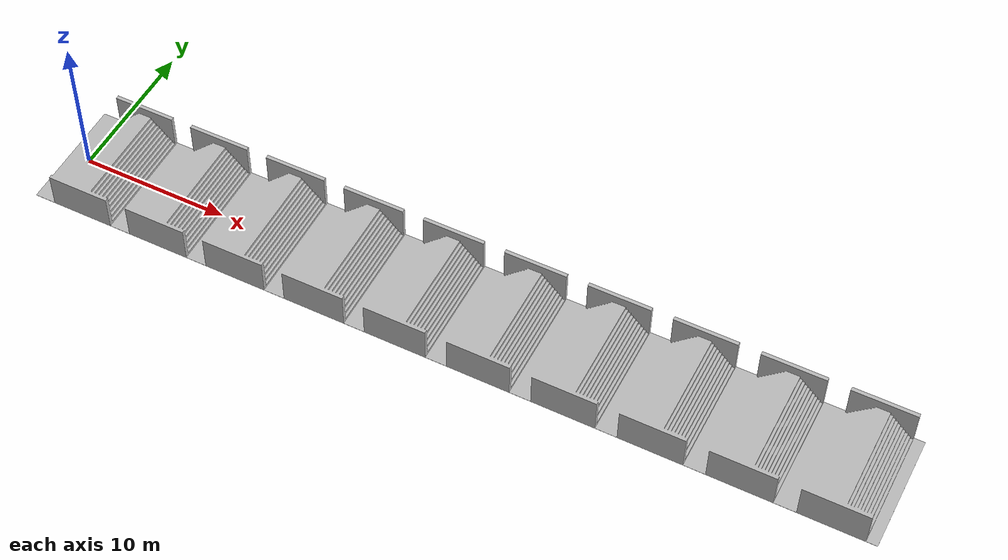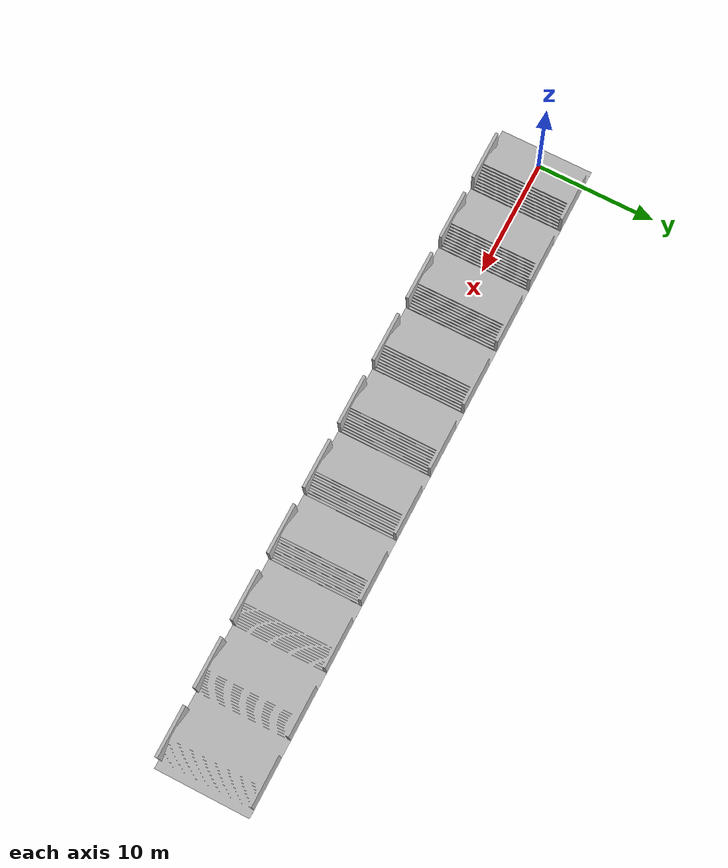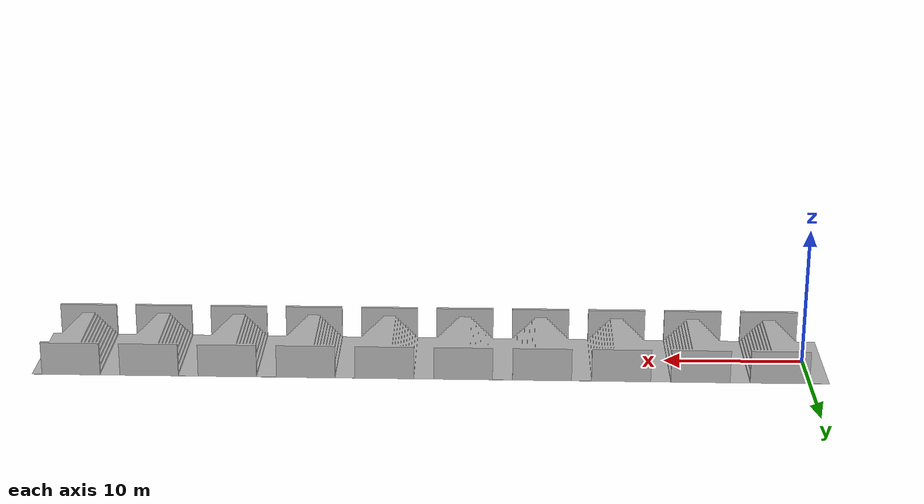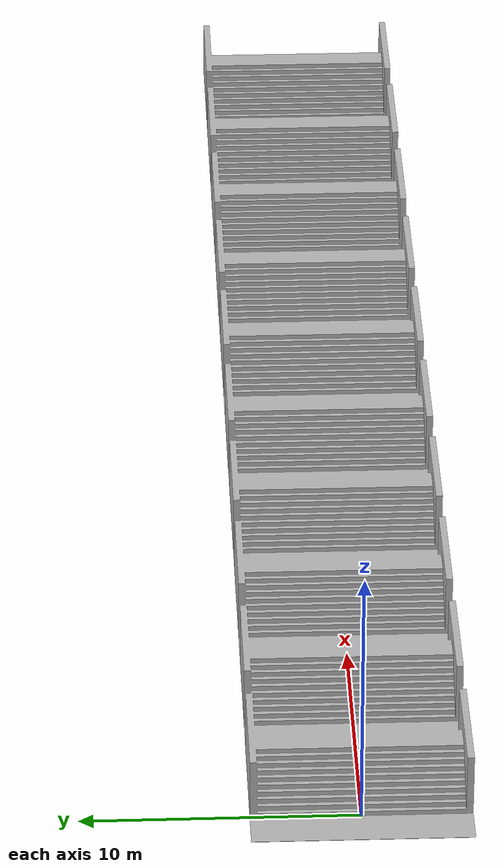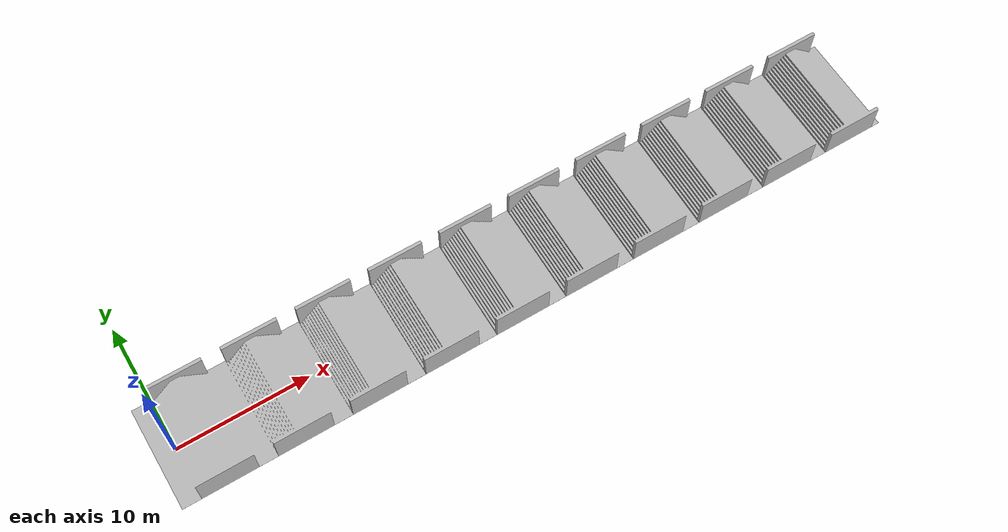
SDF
<?xml version="1.0" ?>
<sdf version="1.5">
  <world name="default">

    <physics type="ode">
      <max_step_size>0.0005</max_step_size>
      <real_time_factor>1</real_time_factor>
      <real_time_update_rate>2000</real_time_update_rate>
      <gravity>0 0 -9.81</gravity>
      <ode>
        <solver>
          <type>quick</type>
          <iters>50</iters>
          <sor>1.3</sor>
        </solver>
        <constraints>
          <cfm>0.0</cfm>
          <erp>0.2</erp>
          <contact_max_correcting_vel>10.0</contact_max_correcting_vel>
          <contact_surface_layer>0.001</contact_surface_layer>
        </constraints>
      </ode>
    </physics>

    <include><uri>model://sun</uri></include>

    <model name="go2_updown_18cm_wide">
      <static>true</static>
      <!-- Align first ascent to x ~= 0 and top surface baseline to z ~= 0. -->
      <pose>2.092461 0 -0.013959 0 0 0</pose>

      <link name="stairs_link">
        <!-- Mesh extracted from updown_18cm_wide.usdz.
             Mesh-local bounds in meters:
             x: [-3.5, 53.199989], y: [-3.952453, 3.952453], z: [0.0, 2.425287] -->
        <collision name="terrain_col">
          <geometry>
            <mesh>
              <uri>meshes/updown_18cm_wide.stl</uri>
            </mesh>
          </geometry>
          <surface>
            <friction>
              <ode>
                <mu>1.0</mu>
                <mu2>1.0</mu2>
              </ode>
            </friction>
          </surface>
        </collision>

        <visual name="terrain_vis">
          <geometry>
            <mesh>
              <uri>meshes/updown_18cm_wide.stl</uri>
            </mesh>
          </geometry>
        </visual>

      </link>
    </model>

    <plugin name="gazebo_ros_state" filename="libgazebo_ros_state.so">
      <ros>
        <namespace>/gazebo</namespace>
      </ros>
      <update_rate>100.0</update_rate>
    </plugin>

  </world>
</sdf>
